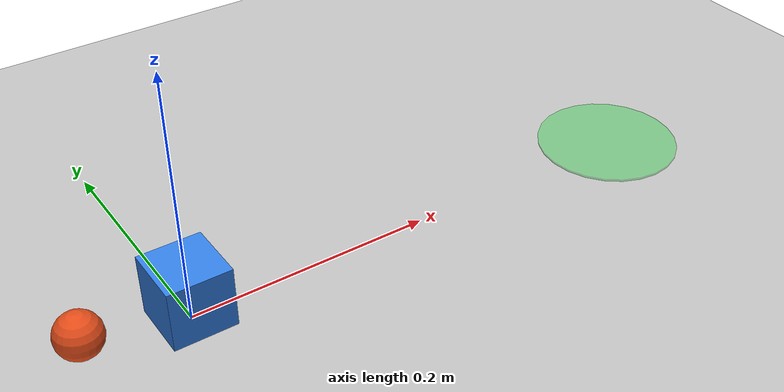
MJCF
<mujoco model="push_scene">
  <compiler angle="radian"/>

  <option timestep="0.005" gravity="0 0 -9.81" integrator="implicitfast"/>

  <asset>
    <texture type="2d" name="floor_tex" builtin="checker"
             rgb1="0.85 0.85 0.85" rgb2="0.65 0.65 0.65" width="512" height="512"/>
    <material name="floor_mat" texture="floor_tex" texrepeat="4 4"/>
    <material name="block_mat" rgba="0.2 0.5 0.9 1"/>
    <material name="target_mat" rgba="0.1 0.8 0.2 0.4"/>
    <material name="pusher_mat" rgba="0.9 0.3 0.1 1"/>
  </asset>

  <worldbody>
    <!-- Ground plane -->
    <geom name="floor" type="plane" size="3 3 0.1"
          material="floor_mat" friction="0.5 0.005 0.0001" condim="3"/>

    <!-- Target marker (visual only) -->
    <body name="target_marker" pos="0.4 0.0 0.002">
      <geom name="target_geom" type="cylinder" size="0.06 0.001"
            material="target_mat" contype="0" conaffinity="0"/>
    </body>

    <!-- Block: 2-DOF slide only (no rotation) for numerical stability -->
    <body name="block" pos="0.0 0.0 0.025">
      <joint name="block_x" type="slide" axis="1 0 0" damping="2.0" armature="0.001"/>
      <joint name="block_y" type="slide" axis="0 1 0" damping="2.0" armature="0.001"/>
      <geom name="block_geom" type="box" size="0.025 0.025 0.025"
            material="block_mat" friction="0.5 0.005 0.0001"
            mass="0.15" condim="3"/>
    </body>

    <!-- Pusher sphere -->
    <body name="pusher" pos="-0.08 0.0 0.025">
      <joint name="pusher_x" type="slide" axis="1 0 0" damping="8.0" armature="0.001"/>
      <joint name="pusher_y" type="slide" axis="0 1 0" damping="8.0" armature="0.001"/>
      <geom name="pusher_geom" type="sphere" size="0.018"
            material="pusher_mat" friction="0.5 0.005 0.0001"
            mass="0.3" condim="3"/>
    </body>
  </worldbody>

  <actuator>
    <velocity name="push_x" joint="pusher_x" kv="30" gear="1" ctrllimited="true" ctrlrange="-1 1"/>
    <velocity name="push_y" joint="pusher_y" kv="30" gear="1" ctrllimited="true" ctrlrange="-1 1"/>
  </actuator>

</mujoco>
